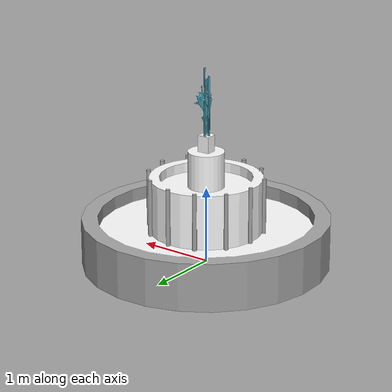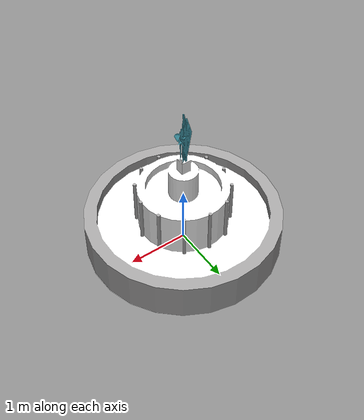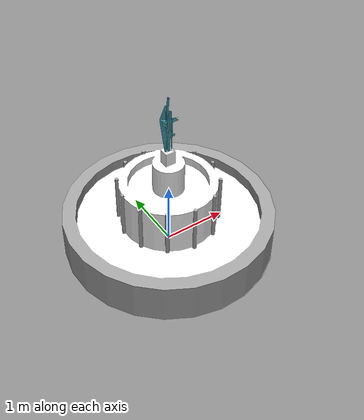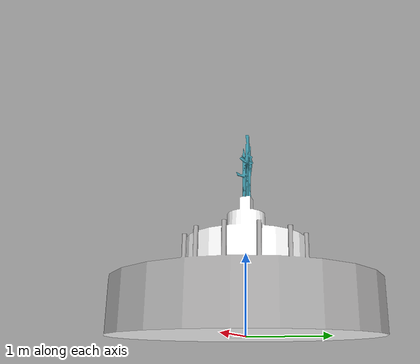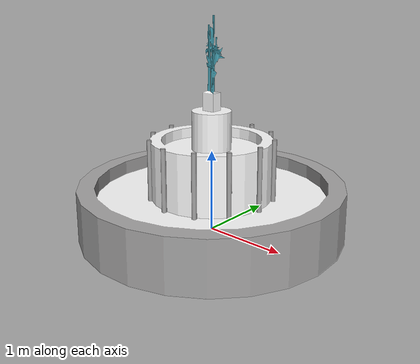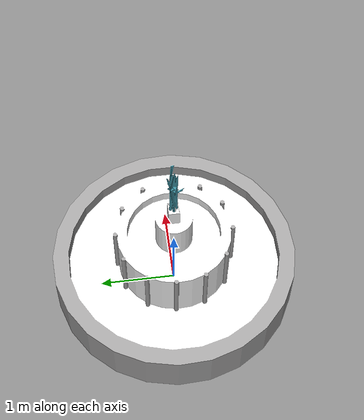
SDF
<?xml version="1.0" ?>
<sdf version="1.5">
  <model name="fountain_park_1">
    <link name="link">
      <pose>0 0 0 0 0 0</pose>
      <collision name="collision">
        <geometry>
          <mesh>
            <uri>model://fountain_park_1/meshes/model.dae</uri>
          </mesh>
        </geometry>
      </collision>
      <visual name="visual">
        <geometry>
          <mesh>
            <uri>model://fountain_park_1/meshes/model.dae</uri>
          </mesh>
        </geometry>
      </visual>
    </link>
    <static>1</static>
  </model>
</sdf>
